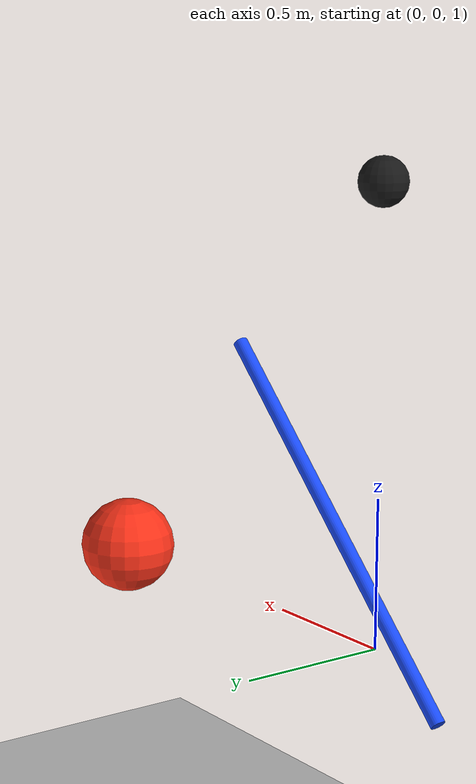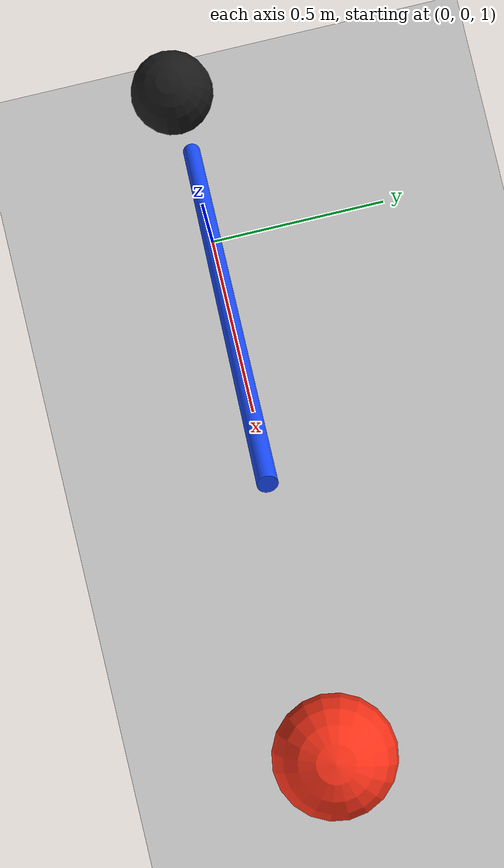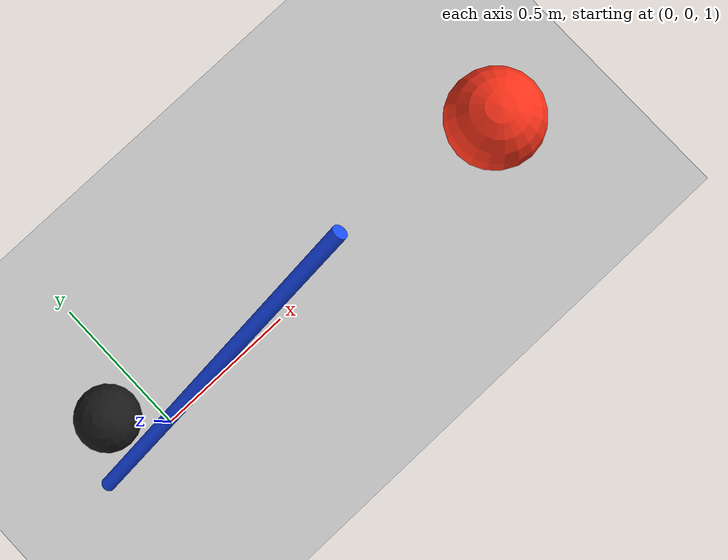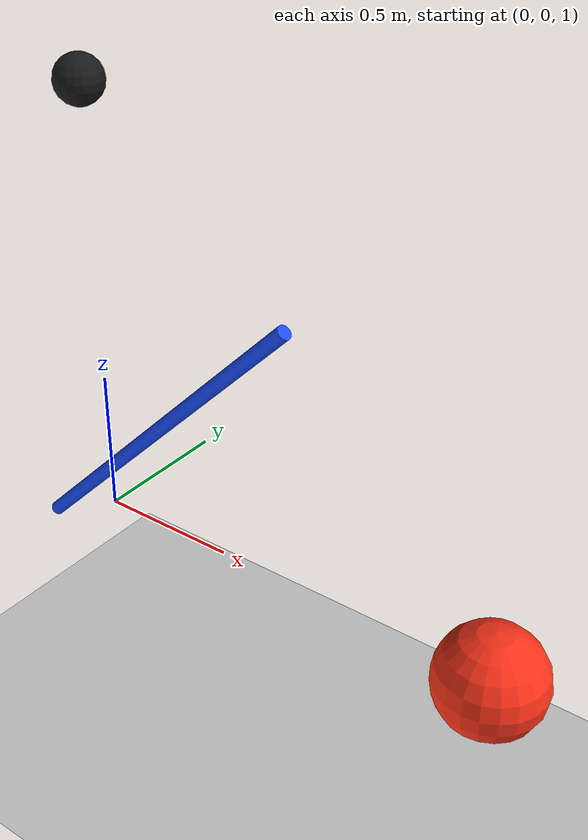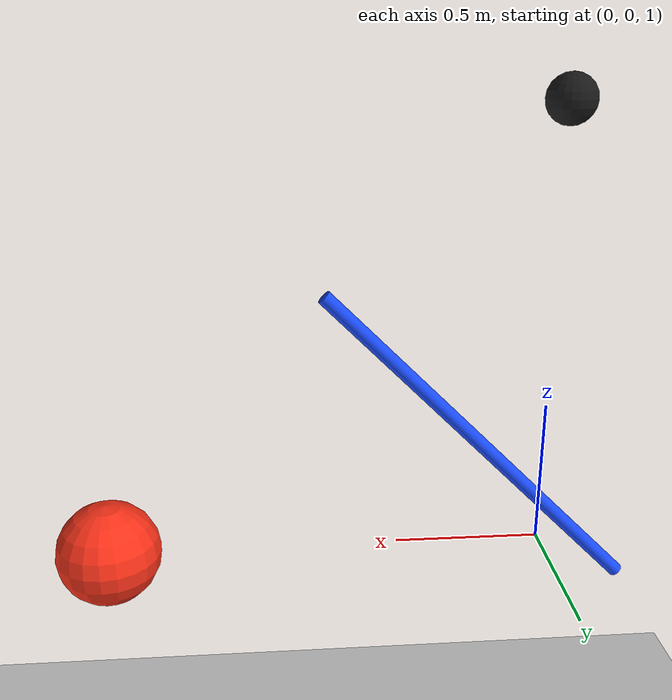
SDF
<?xml version="1.0"?>
<sdf version="1.9">
<world name="pendulum_world">

  <physics type="dart">
    <max_step_size>0.01</max_step_size>
    <real_time_factor>1.0</real_time_factor>
    <real_time_update_rate>1000</real_time_update_rate>
  </physics>

  <gravity>0 0 -9.81</gravity>

  <gui fullscreen="0">
    <camera name="user_camera">
      <pose>0 -6 3 0 0.45 1.5708</pose>
      <view_controller>orbit</view_controller>
    </camera>
  </gui>

  <model name="pendulum">
    <static>false</static>

    <link name="base">
      <pose>0 0 2.5 0 0 0</pose>
      <inertial>
        <mass>10.0</mass>
        <inertia>
          <ixx>0.1</ixx>
          <iyy>0.1</iyy>
          <izz>0.1</izz>
          <ixy>0</ixy>
          <ixz>0</ixz>
          <iyz>0</iyz>
        </inertia>
      </inertial>
      <visual name="base_visual">
        <geometry>
          <sphere>
            <radius>0.08</radius>
          </sphere>
        </geometry>
        <material>
          <ambient>0.1 0.1 0.1 1</ambient>
          <diffuse>0.1 0.1 0.1 1</diffuse>
        </material>
      </visual>
    </link>

    <link name="rod">
      <pose>0.75 0 1.9 0 0.7854 0</pose>
      <inertial>
        <mass>0.2</mass>
        <inertia>
          <ixx>0.05</ixx>
          <iyy>0.05</iyy>
          <izz>0.001</izz>
          <ixy>0</ixy>
          <ixz>0</ixz>
          <iyz>0</iyz>
        </inertia>
      </inertial>
      <visual name="rod_visual">
        <pose>0 0 -0.75 0 0 0</pose>
        <geometry>
          <cylinder>
            <radius>0.025</radius>
            <length>1.5</length>
          </cylinder>
        </geometry>
        <material>
          <ambient>0.1 0.3 1.0 1</ambient>
          <diffuse>0.1 0.3 1.0 1</diffuse>
        </material>
      </visual>
      <collision name="rod_collision">
        <pose>0 0 -0.75 0 0 0</pose>
        <geometry>
          <cylinder>
            <radius>0.025</radius>
            <length>1.5</length>
          </cylinder>
        </geometry>
      </collision>
    </link>

    <link name="bob">
      <pose>1.5 0 1.0 0 0 0</pose>
      <inertial>
        <mass>1.0</mass>
        <inertia>
          <ixx>0.01</ixx>
          <iyy>0.01</iyy>
          <izz>0.01</izz>
          <ixy>0</ixy>
          <ixz>0</ixz>
          <iyz>0</iyz>
        </inertia>
      </inertial>
      <visual name="bob_visual">
        <geometry>
          <sphere>
            <radius>0.18</radius>
          </sphere>
        </geometry>
        <material>
          <ambient>1.0 0.2 0.1 1</ambient>
          <diffuse>1.0 0.2 0.1 1</diffuse>
        </material>
      </visual>
      <collision name="bob_collision">
        <geometry>
          <sphere>
            <radius>0.18</radius>
          </sphere>
        </geometry>
      </collision>
    </link>

    <joint name="pivot" type="revolute">
      <parent>base</parent>
      <child>rod</child>
      <axis>
        <xyz>0 1 0</xyz>
        <limit>
          <lower>-3.14</lower>
          <upper>3.14</upper>
        </limit>
        <dynamics>
          <damping>0.0</damping>
          <friction>0.0</friction>
        </dynamics>
      </axis>
    </joint>

    <joint name="bob_joint" type="fixed">
      <parent>rod</parent>
      <child>bob</child>
    </joint>
  </model>

  <model name="ground_plane">
    <static>true</static>
    <link name="ground_link">
      <collision name="ground_collision">
        <geometry>
          <plane>
            <normal>0 0 1</normal>
            <size>50 50</size>
          </plane>
        </geometry>
      </collision>
      <visual name="ground_visual">
        <geometry>
          <plane>
            <normal>0 0 1</normal>
            <size>50 50</size>
          </plane>
        </geometry>
      </visual>
    </link>
  </model>

  <light name="sun" type="directional">
    <pose>0 0 10 0 0 0</pose>
    <direction>-0.5 0.1 -0.9</direction>
    <diffuse>1 1 1 1</diffuse>
    <cast_shadows>true</cast_shadows>
  </light>

</world>
</sdf>
